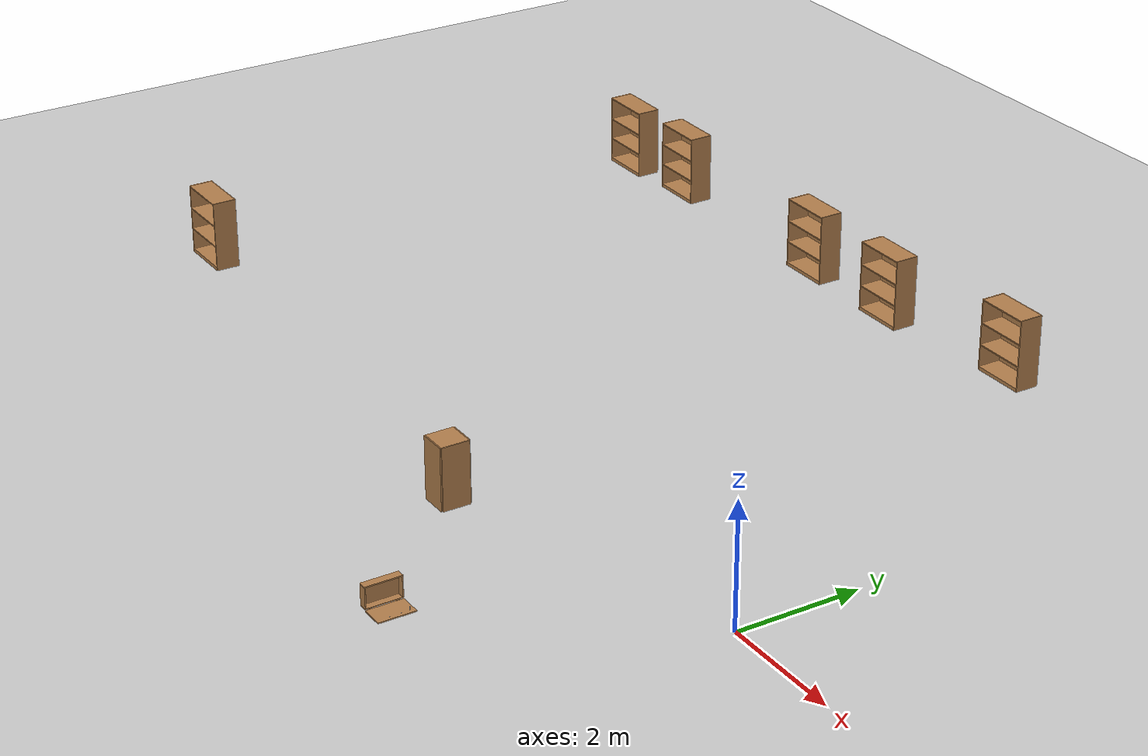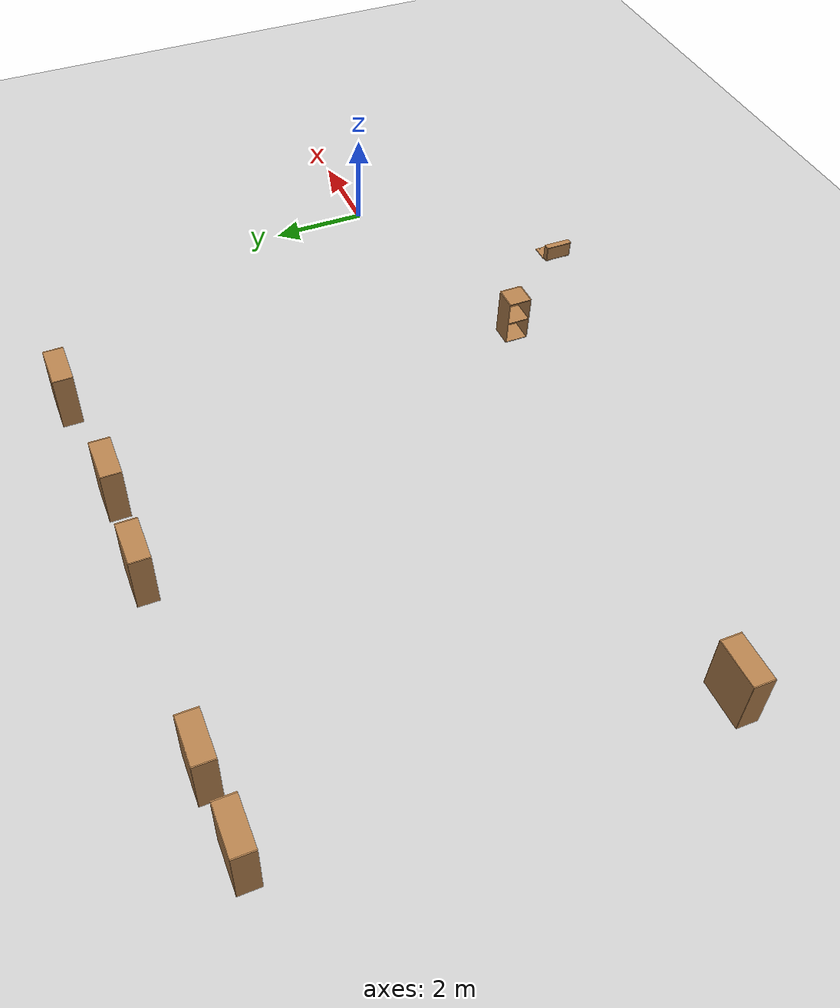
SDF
<sdf version="1.6">
 <world name="default">
  <model name="ground_plane">
   <static>1</static>
   <link name="link">
    <collision name="collision">
     <geometry><plane><normal>0 0 1</normal><size>100 100</size></plane></geometry>
     <surface>
      <contact><collide_bitmask>65535</collide_bitmask></contact>
      <friction><ode><mu>100</mu><mu2>50</mu2></ode></friction>
     </surface>
    </collision>
    <visual name="visual">
     <cast_shadows>0</cast_shadows>
     <geometry><plane><normal>0 0 1</normal><size>100 100</size></plane></geometry>
     <material>
      <script><uri>file://media/materials/scripts/gazebo.material</uri><name>Gazebo/Grey</name></script>
     </material>
    </visual>
   </link>
  </model>
  <model name="cabinet">
   <static>1</static>
   <link name="cabinet_bottom_plate">
    <inertial>
     <pose>0 0 -1 0 -0 0</pose>
     <inertia><ixx>2.05</ixx><ixy>0</ixy><ixz>0</ixz><iyy>2.05</iyy><iyz>0</iyz><izz>2.05</izz></inertia>
     <mass>25</mass>
    </inertial>
    <collision name="cabinet_bottom_plate_geom">
     <pose>0 0 0.01 0 -0 0</pose>
     <geometry><box><size>0.45 0.45 0.02</size></box></geometry>
    </collision>
    <visual name="cabinet_bottom_plate_geom_visual">
     <pose>0 0 0.01 0 -0 0</pose>
     <geometry><box><size>0.45 0.45 0.02</size></box></geometry>
     <material>
      <script><uri>file://media/materials/scripts/gazebo.material</uri><name>Gazebo/Wood</name></script>
     </material>
    </visual>
    <collision name="cabinet_bottom_plate_geom_cabinet_back_plate">
     <pose>0.235 0 0.51 0 -0 0</pose>
     <geometry><box><size>0.02 0.45 1.02</size></box></geometry>
    </collision>
    <visual name="cabinet_bottom_plate_geom_cabinet_back_plate_visual">
     <pose>0.235 0 0.51 0 -0 0</pose>
     <geometry><box><size>0.02 0.45 1.02</size></box></geometry>
     <material>
      <script><uri>file://media/materials/scripts/gazebo.material</uri><name>Gazebo/Wood</name></script>
     </material>
    </visual>
    <collision name="cabinet_bottom_plate_geom_cabinet_left_plate">
     <pose>0 0.235 0.51 0 -0 0</pose>
     <geometry><box><size>0.45 0.02 1.02</size></box></geometry>
    </collision>
    <visual name="cabinet_bottom_plate_geom_cabinet_left_plate_visual">
     <pose>0 0.235 0.51 0 -0 0</pose>
     <geometry><box><size>0.45 0.02 1.02</size></box></geometry>
     <material>
      <script><uri>file://media/materials/scripts/gazebo.material</uri><name>Gazebo/Wood</name></script>
     </material>
    </visual>
    <collision name="cabinet_bottom_plate_geom_cabinet_middle_plate">
     <pose>0 0 0.51 0 -0 0</pose>
     <geometry><box><size>0.45 0.45 0.02</size></box></geometry>
    </collision>
    <visual name="cabinet_bottom_plate_geom_cabinet_middle_plate_visual">
     <pose>0 0 0.51 0 -0 0</pose>
     <geometry><box><size>0.45 0.45 0.02</size></box></geometry>
     <material>
      <script><uri>file://media/materials/scripts/gazebo.material</uri><name>Gazebo/Wood</name></script>
     </material>
    </visual>
    <collision name="cabinet_bottom_plate_geom_cabinet_right_plate">
     <pose>0 -0.235 0.51 0 -0 0</pose>
     <geometry><box><size>0.45 0.02 1.02</size></box></geometry>
    </collision>
    <visual name="cabinet_bottom_plate_geom_cabinet_right_plate_visual">
     <pose>0 -0.235 0.51 0 -0 0</pose>
     <geometry><box><size>0.45 0.02 1.02</size></box></geometry>
     <material>
      <script><uri>file://media/materials/scripts/gazebo.material</uri><name>Gazebo/Wood</name></script>
     </material>
    </visual>
    <collision name="cabinet_bottom_plate_geom_cabinet_top_plate">
     <pose>0 0 1.01 0 -0 0</pose>
     <geometry><box><size>0.45 0.45 0.02</size></box></geometry>
    </collision>
    <visual name="cabinet_bottom_plate_geom_cabinet_top_plate_visual">
     <pose>0 0 1.01 0 -0 0</pose>
     <geometry><box><size>0.45 0.45 0.02</size></box></geometry>
     <material>
      <script><uri>file://media/materials/scripts/gazebo.material</uri><name>Gazebo/Wood</name></script>
     </material>
    </visual>
   </link>
   <pose>-4.98753 -1.47077 0 0 -0 0</pose>
  </model>
  <model name="wooden_case_metal_peg">
   <link name="wooden_case::base">
    <pose>0 0 0.024 0 -0 0</pose>
    <inertial>
     <pose>-0.022184 0 0.171592 0 -0 0</pose>
     <mass>3.96264</mass>
     <inertia>
      <ixx>0.213536</ixx>
      <ixy>0</ixy>
      <ixz>0.000779377</ixz>
      <iyy>0.0708943</iyy>
      <iyz>0</iyz>
      <izz>0.154604</izz>
     </inertia>
    </inertial>
    <collision name="collision_back">
     <pose>-0.053975 0 0.1778 0 -0 0</pose>
     <geometry><box><size>0.01905 0.5461 0.3175</size></box></geometry>
     <surface>
      <contact>
       <poissons_ratio>0.347</poissons_ratio>
       <elastic_modulus>8.8e+09</elastic_modulus>
       <ode><kp>100000</kp><kd>100</kd><max_vel>100</max_vel><min_depth>0.001</min_depth></ode>
      </contact>
      <friction>
       <torsional>
        <coefficient>1</coefficient>
        <use_patch_radius>0</use_patch_radius>
        <surface_radius>0.01</surface_radius>
       </torsional>
      </friction>
     </surface>
    </collision>
    <visual name="visual_back">
     <pose>-0.053975 0 0.1778 0 -0 0</pose>
     <geometry><box><size>0.01905 0.5461 0.3175</size></box></geometry>
     <material>
      <script><uri>file://media/materials/scripts/gazebo.material</uri><name>Gazebo/Wood</name></script>
     </material>
    </visual>
    <collision name="collision_bottom">
     <pose>0 0 0.009525 0 -0 0</pose>
     <geometry><box><size>0.127 0.5842 0.01905</size></box></geometry>
     <surface>
      <contact>
       <poissons_ratio>0.347</poissons_ratio>
       <elastic_modulus>8.8e+09</elastic_modulus>
       <ode><kp>100000</kp><kd>100</kd><max_vel>100</max_vel><min_depth>0.001</min_depth></ode>
      </contact>
      <friction>
       <torsional>
        <coefficient>1</coefficient>
        <use_patch_radius>0</use_patch_radius>
        <surface_radius>0.01</surface_radius>
       </torsional>
      </friction>
     </surface>
    </collision>
    <visual name="visual_bottom">
     <pose>0 0 0.009525 0 -0 0</pose>
     <geometry><box><size>0.127 0.5842 0.01905</size></box></geometry>
     <material>
      <script><uri>file://media/materials/scripts/gazebo.material</uri><name>Gazebo/Wood</name></script>
     </material>
    </visual>
    <collision name="collision_top">
     <pose>0 0 0.346075 0 -0 0</pose>
     <geometry><box><size>0.127 0.5842 0.01905</size></box></geometry>
     <surface>
      <contact>
       <poissons_ratio>0.347</poissons_ratio>
       <elastic_modulus>8.8e+09</elastic_modulus>
       <ode><kp>100000</kp><kd>100</kd><max_vel>100</max_vel><min_depth>0.001</min_depth></ode>
      </contact>
      <friction>
       <torsional>
        <coefficient>1</coefficient>
        <use_patch_radius>0</use_patch_radius>
        <surface_radius>0.01</surface_radius>
       </torsional>
      </friction>
     </surface>
    </collision>
    <visual name="visual_top">
     <pose>0 0 0.346075 0 -0 0</pose>
     <geometry><box><size>0.127 0.5842 0.01905</size></box></geometry>
     <material>
      <script><uri>file://media/materials/scripts/gazebo.material</uri><name>Gazebo/Wood</name></script>
     </material>
    </visual>
    <collision name="collision_left">
     <pose>0 -0.282575 0.1778 0 -0 0</pose>
     <geometry><box><size>0.127 0.01905 0.3175</size></box></geometry>
     <surface>
      <contact>
       <poissons_ratio>0.347</poissons_ratio>
       <elastic_modulus>8.8e+09</elastic_modulus>
       <ode><kp>100000</kp><kd>100</kd><max_vel>100</max_vel><min_depth>0.001</min_depth></ode>
      </contact>
      <friction>
       <torsional>
        <coefficient>1</coefficient>
        <use_patch_radius>0</use_patch_radius>
        <surface_radius>0.01</surface_radius>
       </torsional>
      </friction>
     </surface>
    </collision>
    <visual name="visual_left">
     <pose>0 -0.282575 0.1778 0 -0 0</pose>
     <geometry><box><size>0.127 0.01905 0.3175</size></box></geometry>
     <material>
      <script><uri>file://media/materials/scripts/gazebo.material</uri><name>Gazebo/Wood</name></script>
     </material>
    </visual>
    <collision name="collision_right">
     <pose>0 0.282575 0.1778 0 -0 0</pose>
     <geometry><box><size>0.127 0.01905 0.3175</size></box></geometry>
     <surface>
      <contact>
       <poissons_ratio>0.347</poissons_ratio>
       <elastic_modulus>8.8e+09</elastic_modulus>
       <ode><kp>100000</kp><kd>100</kd><max_vel>100</max_vel><min_depth>0.001</min_depth></ode>
      </contact>
      <friction>
       <torsional>
        <coefficient>1</coefficient>
        <use_patch_radius>0</use_patch_radius>
        <surface_radius>0.01</surface_radius>
       </torsional>
      </friction>
     </surface>
    </collision>
    <visual name="visual_right">
     <pose>0 0.282575 0.1778 0 -0 0</pose>
     <geometry><box><size>0.127 0.01905 0.3175</size></box></geometry>
     <material>
      <script><uri>file://media/materials/scripts/gazebo.material</uri><name>Gazebo/Wood</name></script>
     </material>
    </visual>
    <collision name="collision_block_left">
     <pose>0.0095 -0.2151 -0.012 0 -0 0</pose>
     <geometry><box><size>0.108 0.05 0.024</size></box></geometry>
     <surface>
      <contact>
       <poissons_ratio>0.347</poissons_ratio>
       <elastic_modulus>8.8e+09</elastic_modulus>
       <ode><kp>100000</kp><kd>100</kd><max_vel>100</max_vel><min_depth>0.001</min_depth></ode>
      </contact>
      <friction>
       <torsional>
        <coefficient>1</coefficient>
        <use_patch_radius>0</use_patch_radius>
        <surface_radius>0.01</surface_radius>
       </torsional>
      </friction>
     </surface>
    </collision>
    <visual name="visual_block_left">
     <pose>0.0095 -0.2151 -0.012 0 -0 0</pose>
     <geometry><box><size>0.108 0.05 0.024</size></box></geometry>
     <material>
      <script><uri>file://media/materials/scripts/gazebo.material</uri><name>Gazebo/Wood</name></script>
     </material>
    </visual>
    <collision name="collision_block_right">
     <pose>0.0095 0.2151 -0.012 0 -0 0</pose>
     <geometry><box><size>0.108 0.05 0.024</size></box></geometry>
     <surface>
      <contact>
       <poissons_ratio>0.347</poissons_ratio>
       <elastic_modulus>8.8e+09</elastic_modulus>
       <ode><kp>100000</kp><kd>100</kd><max_vel>100</max_vel><min_depth>0.001</min_depth></ode>
      </contact>
      <friction>
       <torsional>
        <coefficient>1</coefficient>
        <use_patch_radius>0</use_patch_radius>
        <surface_radius>0.01</surface_radius>
       </torsional>
      </friction>
     </surface>
    </collision>
    <visual name="visual_block_right">
     <pose>0.0095 0.2151 -0.012 0 -0 0</pose>
     <geometry><box><size>0.108 0.05 0.024</size></box></geometry>
     <material>
      <script><uri>file://media/materials/scripts/gazebo.material</uri><name>Gazebo/Wood</name></script>
     </material>
    </visual>
   </link>
   <link name="wooden_case::lid">
    <pose>0.243775 0 0.009525 0 -0 0</pose>
    <inertial>
     <mass>1.97874</mass>
     <inertia>
      <ixx>0.0563367</ixx>
      <ixy>0</ixy>
      <ixz>0</ixz>
      <iyy>0.020911</iyy>
      <iyz>0</iyz>
      <izz>0.0771281</izz>
     </inertia>
    </inertial>
    <collision name="collision">
     <geometry><box><size>0.3556 0.5842 0.01905</size></box></geometry>
     <surface>
      <contact>
       <poissons_ratio>0.347</poissons_ratio>
       <elastic_modulus>8.8e+09</elastic_modulus>
       <ode><kp>100000</kp><kd>100</kd><max_vel>100</max_vel><min_depth>0.001</min_depth></ode>
      </contact>
      <friction>
       <torsional>
        <coefficient>1</coefficient>
        <use_patch_radius>0</use_patch_radius>
        <surface_radius>0.01</surface_radius>
       </torsional>
      </friction>
     </surface>
    </collision>
    <visual name="visual">
     <geometry><box><size>0.3556 0.5842 0.01905</size></box></geometry>
     <material>
      <script><uri>file://media/materials/scripts/gazebo.material</uri><name>Gazebo/Wood</name></script>
     </material>
    </visual>
    <visual name="tee_nut_1">
     <pose>0.122 -0.216 0 0 -0 0</pose>
     <geometry><cylinder><radius>0.00635</radius><length>0.0192405</length></cylinder></geometry>
     <material>
      <script><uri>file://media/materials/scripts/gazebo.material</uri><name>Gazebo/Grey</name></script>
     </material>
    </visual>
    <visual name="tee_nut_2">
     <pose>0.122 -0.088 0 0 -0 0</pose>
     <geometry><cylinder><radius>0.00635</radius><length>0.0192405</length></cylinder></geometry>
     <material>
      <script><uri>file://media/materials/scripts/gazebo.material</uri><name>Gazebo/Grey</name></script>
     </material>
    </visual>
    <visual name="tee_nut_3">
     <pose>0.122 0.088 0 0 -0 0</pose>
     <geometry><cylinder><radius>0.00635</radius><length>0.0192405</length></cylinder></geometry>
     <material>
      <script><uri>file://media/materials/scripts/gazebo.material</uri><name>Gazebo/Grey</name></script>
     </material>
    </visual>
    <visual name="tee_nut_4">
     <pose>0.122 0.216 0 0 -0 0</pose>
     <geometry><cylinder><radius>0.00635</radius><length>0.0192405</length></cylinder></geometry>
     <material>
      <script><uri>file://media/materials/scripts/gazebo.material</uri><name>Gazebo/Grey</name></script>
     </material>
    </visual>
   </link>
   <joint name="wooden_case::lid_hinge" type="revolute">
    <pose>-0.1778 0 0.01905 0 -0 0</pose>
    <parent>wooden_case::base</parent>
    <child>wooden_case::lid</child>
    <axis>
     <xyz>0 1 0</xyz>
     <limit><upper>0.523599</upper><lower>-1.5708</lower></limit>
     <use_parent_model_frame>0</use_parent_model_frame>
     <dynamics><spring_reference>0</spring_reference><spring_stiffness>0</spring_stiffness></dynamics>
    </axis>
   </joint>
   <link name="peg::link">
    <pose>0.365774 0.216 0.05005 0 -0 0</pose>
    <inertial>
     <mass>0.0121</mass>
     <inertia>
      <ixx>3.90898e-06</ixx>
      <ixy>0</ixy>
      <ixz>0</ixz>
      <iyy>3.90898e-06</iyy>
      <iyz>0</iyz>
      <izz>6.58845e-08</izz>
     </inertia>
    </inertial>
    <collision name="collision">
     <geometry><cylinder><radius>0.0033</radius><length>0.062</length></cylinder></geometry>
     <surface>
      <contact>
       <poissons_ratio>0.305</poissons_ratio>
       <elastic_modulus>2e+11</elastic_modulus>
       <ode><kp>100000</kp><kd>100</kd><max_vel>100</max_vel><min_depth>0.001</min_depth></ode>
      </contact>
      <friction>
       <torsional>
        <coefficient>1</coefficient>
        <use_patch_radius>0</use_patch_radius>
        <surface_radius>0.01</surface_radius>
       </torsional>
      </friction>
     </surface>
    </collision>
    <visual name="visual">
     <geometry><cylinder><radius>0.0033</radius><length>0.062</length></cylinder></geometry>
     <material>
      <script><uri>file://media/materials/scripts/gazebo.material</uri><name>Gazebo/Grey</name></script>
     </material>
    </visual>
   </link>
   <joint name="case_peg" type="revolute">
    <child>peg::link</child>
    <parent>wooden_case::lid</parent>
    <axis>
     <xyz>0 0 1</xyz>
     <limit><upper>0</upper><lower>0</lower></limit>
     <use_parent_model_frame>0</use_parent_model_frame>
     <dynamics><spring_reference>0</spring_reference><spring_stiffness>0</spring_stiffness></dynamics>
    </axis>
   </joint>
   <pose>-3.07048 -3.55613 -0.001057 0 -0.000425 0</pose>
  </model>
  <model name="bookshelf">
   <static>1</static>
   <link name="link">
    <inertial><mass>1</mass></inertial>
    <collision name="back">
     <pose>0 0.005 0.6 0 -0 0</pose>
     <geometry><box><size>0.9 0.01 1.2</size></box></geometry>
    </collision>
    <visual name="visual1">
     <pose>0 0.005 0.6 0 -0 0</pose>
     <geometry><box><size>0.9 0.01 1.2</size></box></geometry>
     <material>
      <script><uri>file://media/materials/scripts/gazebo.material</uri><name>Gazebo/Wood</name></script>
     </material>
    </visual>
    <collision name="left_side">
     <pose>0.45 -0.195 0.6 0 -0 0</pose>
     <geometry><box><size>0.02 0.4 1.2</size></box></geometry>
    </collision>
    <visual name="visual2">
     <pose>0.45 -0.195 0.6 0 -0 0</pose>
     <geometry><box><size>0.02 0.4 1.2</size></box></geometry>
     <material>
      <script><uri>file://media/materials/scripts/gazebo.material</uri><name>Gazebo/Wood</name></script>
     </material>
    </visual>
    <collision name="right_side">
     <pose>-0.45 -0.195 0.6 0 -0 0</pose>
     <geometry><box><size>0.02 0.4 1.2</size></box></geometry>
    </collision>
    <visual name="visual3">
     <pose>-0.45 -0.195 0.6 0 -0 0</pose>
     <geometry><box><size>0.02 0.4 1.2</size></box></geometry>
     <material>
      <script><uri>file://media/materials/scripts/gazebo.material</uri><name>Gazebo/Wood</name></script>
     </material>
    </visual>
    <collision name="bottom">
     <pose>0 -0.195 0.03 0 -0 0</pose>
     <geometry><box><size>0.88 0.4 0.06</size></box></geometry>
    </collision>
    <visual name="visual4">
     <pose>0 -0.195 0.03 0 -0 0</pose>
     <geometry><box><size>0.88 0.4 0.06</size></box></geometry>
     <material>
      <script><uri>file://media/materials/scripts/gazebo.material</uri><name>Gazebo/Wood</name></script>
     </material>
    </visual>
    <collision name="top">
     <pose>0 -0.195 1.19 0 -0 0</pose>
     <geometry><box><size>0.88 0.4 0.02</size></box></geometry>
    </collision>
    <visual name="visual5">
     <pose>0 -0.195 1.19 0 -0 0</pose>
     <geometry><box><size>0.88 0.4 0.02</size></box></geometry>
     <material>
      <script><uri>file://media/materials/scripts/gazebo.material</uri><name>Gazebo/Wood</name></script>
     </material>
    </visual>
    <collision name="low_shelf">
     <pose>0 -0.195 0.43 0 -0 0</pose>
     <geometry><box><size>0.88 0.4 0.02</size></box></geometry>
    </collision>
    <visual name="visual6">
     <pose>0 -0.195 0.43 0 -0 0</pose>
     <geometry><box><size>0.88 0.4 0.02</size></box></geometry>
     <material>
      <script><uri>file://media/materials/scripts/gazebo.material</uri><name>Gazebo/Wood</name></script>
     </material>
    </visual>
    <collision name="high_shelf">
     <pose>0 -0.195 0.8 0 -0 0</pose>
     <geometry><box><size>0.88 0.4 0.02</size></box></geometry>
    </collision>
    <visual name="visual7">
     <pose>0 -0.195 0.8 0 -0 0</pose>
     <geometry><box><size>0.88 0.4 0.02</size></box></geometry>
     <material>
      <script><uri>file://media/materials/scripts/gazebo.material</uri><name>Gazebo/Wood</name></script>
     </material>
    </visual>
   </link>
   <pose>-3.753 7.8436 0 0 -0 0</pose>
  </model>
  <model name="bookshelf_clone_0">
   <static>1</static>
   <link name="link">
    <inertial><mass>1</mass></inertial>
    <collision name="back">
     <pose>0 0.005 0.6 0 -0 0</pose>
     <geometry><box><size>0.9 0.01 1.2</size></box></geometry>
    </collision>
    <visual name="visual1">
     <pose>0 0.005 0.6 0 -0 0</pose>
     <geometry><box><size>0.9 0.01 1.2</size></box></geometry>
     <material>
      <script><uri>file://media/materials/scripts/gazebo.material</uri><name>Gazebo/Wood</name></script>
     </material>
    </visual>
    <collision name="left_side">
     <pose>0.45 -0.195 0.6 0 -0 0</pose>
     <geometry><box><size>0.02 0.4 1.2</size></box></geometry>
    </collision>
    <visual name="visual2">
     <pose>0.45 -0.195 0.6 0 -0 0</pose>
     <geometry><box><size>0.02 0.4 1.2</size></box></geometry>
     <material>
      <script><uri>file://media/materials/scripts/gazebo.material</uri><name>Gazebo/Wood</name></script>
     </material>
    </visual>
    <collision name="right_side">
     <pose>-0.45 -0.195 0.6 0 -0 0</pose>
     <geometry><box><size>0.02 0.4 1.2</size></box></geometry>
    </collision>
    <visual name="visual3">
     <pose>-0.45 -0.195 0.6 0 -0 0</pose>
     <geometry><box><size>0.02 0.4 1.2</size></box></geometry>
     <material>
      <script><uri>file://media/materials/scripts/gazebo.material</uri><name>Gazebo/Wood</name></script>
     </material>
    </visual>
    <collision name="bottom">
     <pose>0 -0.195 0.03 0 -0 0</pose>
     <geometry><box><size>0.88 0.4 0.06</size></box></geometry>
    </collision>
    <visual name="visual4">
     <pose>0 -0.195 0.03 0 -0 0</pose>
     <geometry><box><size>0.88 0.4 0.06</size></box></geometry>
     <material>
      <script><uri>file://media/materials/scripts/gazebo.material</uri><name>Gazebo/Wood</name></script>
     </material>
    </visual>
    <collision name="top">
     <pose>0 -0.195 1.19 0 -0 0</pose>
     <geometry><box><size>0.88 0.4 0.02</size></box></geometry>
    </collision>
    <visual name="visual5">
     <pose>0 -0.195 1.19 0 -0 0</pose>
     <geometry><box><size>0.88 0.4 0.02</size></box></geometry>
     <material>
      <script><uri>file://media/materials/scripts/gazebo.material</uri><name>Gazebo/Wood</name></script>
     </material>
    </visual>
    <collision name="low_shelf">
     <pose>0 -0.195 0.43 0 -0 0</pose>
     <geometry><box><size>0.88 0.4 0.02</size></box></geometry>
    </collision>
    <visual name="visual6">
     <pose>0 -0.195 0.43 0 -0 0</pose>
     <geometry><box><size>0.88 0.4 0.02</size></box></geometry>
     <material>
      <script><uri>file://media/materials/scripts/gazebo.material</uri><name>Gazebo/Wood</name></script>
     </material>
    </visual>
    <collision name="high_shelf">
     <pose>0 -0.195 0.8 0 -0 0</pose>
     <geometry><box><size>0.88 0.4 0.02</size></box></geometry>
    </collision>
    <visual name="visual7">
     <pose>0 -0.195 0.8 0 -0 0</pose>
     <geometry><box><size>0.88 0.4 0.02</size></box></geometry>
     <material>
      <script><uri>file://media/materials/scripts/gazebo.material</uri><name>Gazebo/Wood</name></script>
     </material>
    </visual>
   </link>
   <pose>-13.7577 7.48584 0 0 -0 0</pose>
  </model>
  <model name="bookshelf_clone_1">
   <static>1</static>
   <link name="link">
    <inertial><mass>1</mass></inertial>
    <collision name="back">
     <pose>0 0.005 0.6 0 -0 0</pose>
     <geometry><box><size>0.9 0.01 1.2</size></box></geometry>
    </collision>
    <visual name="visual1">
     <pose>0 0.005 0.6 0 -0 0</pose>
     <geometry><box><size>0.9 0.01 1.2</size></box></geometry>
     <material>
      <script><uri>file://media/materials/scripts/gazebo.material</uri><name>Gazebo/Wood</name></script>
     </material>
    </visual>
    <collision name="left_side">
     <pose>0.45 -0.195 0.6 0 -0 0</pose>
     <geometry><box><size>0.02 0.4 1.2</size></box></geometry>
    </collision>
    <visual name="visual2">
     <pose>0.45 -0.195 0.6 0 -0 0</pose>
     <geometry><box><size>0.02 0.4 1.2</size></box></geometry>
     <material>
      <script><uri>file://media/materials/scripts/gazebo.material</uri><name>Gazebo/Wood</name></script>
     </material>
    </visual>
    <collision name="right_side">
     <pose>-0.45 -0.195 0.6 0 -0 0</pose>
     <geometry><box><size>0.02 0.4 1.2</size></box></geometry>
    </collision>
    <visual name="visual3">
     <pose>-0.45 -0.195 0.6 0 -0 0</pose>
     <geometry><box><size>0.02 0.4 1.2</size></box></geometry>
     <material>
      <script><uri>file://media/materials/scripts/gazebo.material</uri><name>Gazebo/Wood</name></script>
     </material>
    </visual>
    <collision name="bottom">
     <pose>0 -0.195 0.03 0 -0 0</pose>
     <geometry><box><size>0.88 0.4 0.06</size></box></geometry>
    </collision>
    <visual name="visual4">
     <pose>0 -0.195 0.03 0 -0 0</pose>
     <geometry><box><size>0.88 0.4 0.06</size></box></geometry>
     <material>
      <script><uri>file://media/materials/scripts/gazebo.material</uri><name>Gazebo/Wood</name></script>
     </material>
    </visual>
    <collision name="top">
     <pose>0 -0.195 1.19 0 -0 0</pose>
     <geometry><box><size>0.88 0.4 0.02</size></box></geometry>
    </collision>
    <visual name="visual5">
     <pose>0 -0.195 1.19 0 -0 0</pose>
     <geometry><box><size>0.88 0.4 0.02</size></box></geometry>
     <material>
      <script><uri>file://media/materials/scripts/gazebo.material</uri><name>Gazebo/Wood</name></script>
     </material>
    </visual>
    <collision name="low_shelf">
     <pose>0 -0.195 0.43 0 -0 0</pose>
     <geometry><box><size>0.88 0.4 0.02</size></box></geometry>
    </collision>
    <visual name="visual6">
     <pose>0 -0.195 0.43 0 -0 0</pose>
     <geometry><box><size>0.88 0.4 0.02</size></box></geometry>
     <material>
      <script><uri>file://media/materials/scripts/gazebo.material</uri><name>Gazebo/Wood</name></script>
     </material>
    </visual>
    <collision name="high_shelf">
     <pose>0 -0.195 0.8 0 -0 0</pose>
     <geometry><box><size>0.88 0.4 0.02</size></box></geometry>
    </collision>
    <visual name="visual7">
     <pose>0 -0.195 0.8 0 -0 0</pose>
     <geometry><box><size>0.88 0.4 0.02</size></box></geometry>
     <material>
      <script><uri>file://media/materials/scripts/gazebo.material</uri><name>Gazebo/Wood</name></script>
     </material>
    </visual>
   </link>
   <pose>-12.2693 7.60192 0 0 -0 0</pose>
  </model>
  <model name="bookshelf_clone_2">
   <static>1</static>
   <link name="link">
    <inertial><mass>1</mass></inertial>
    <collision name="back">
     <pose>0 0.005 0.6 0 -0 0</pose>
     <geometry><box><size>0.9 0.01 1.2</size></box></geometry>
    </collision>
    <visual name="visual1">
     <pose>0 0.005 0.6 0 -0 0</pose>
     <geometry><box><size>0.9 0.01 1.2</size></box></geometry>
     <material>
      <script><uri>file://media/materials/scripts/gazebo.material</uri><name>Gazebo/Wood</name></script>
     </material>
    </visual>
    <collision name="left_side">
     <pose>0.45 -0.195 0.6 0 -0 0</pose>
     <geometry><box><size>0.02 0.4 1.2</size></box></geometry>
    </collision>
    <visual name="visual2">
     <pose>0.45 -0.195 0.6 0 -0 0</pose>
     <geometry><box><size>0.02 0.4 1.2</size></box></geometry>
     <material>
      <script><uri>file://media/materials/scripts/gazebo.material</uri><name>Gazebo/Wood</name></script>
     </material>
    </visual>
    <collision name="right_side">
     <pose>-0.45 -0.195 0.6 0 -0 0</pose>
     <geometry><box><size>0.02 0.4 1.2</size></box></geometry>
    </collision>
    <visual name="visual3">
     <pose>-0.45 -0.195 0.6 0 -0 0</pose>
     <geometry><box><size>0.02 0.4 1.2</size></box></geometry>
     <material>
      <script><uri>file://media/materials/scripts/gazebo.material</uri><name>Gazebo/Wood</name></script>
     </material>
    </visual>
    <collision name="bottom">
     <pose>0 -0.195 0.03 0 -0 0</pose>
     <geometry><box><size>0.88 0.4 0.06</size></box></geometry>
    </collision>
    <visual name="visual4">
     <pose>0 -0.195 0.03 0 -0 0</pose>
     <geometry><box><size>0.88 0.4 0.06</size></box></geometry>
     <material>
      <script><uri>file://media/materials/scripts/gazebo.material</uri><name>Gazebo/Wood</name></script>
     </material>
    </visual>
    <collision name="top">
     <pose>0 -0.195 1.19 0 -0 0</pose>
     <geometry><box><size>0.88 0.4 0.02</size></box></geometry>
    </collision>
    <visual name="visual5">
     <pose>0 -0.195 1.19 0 -0 0</pose>
     <geometry><box><size>0.88 0.4 0.02</size></box></geometry>
     <material>
      <script><uri>file://media/materials/scripts/gazebo.material</uri><name>Gazebo/Wood</name></script>
     </material>
    </visual>
    <collision name="low_shelf">
     <pose>0 -0.195 0.43 0 -0 0</pose>
     <geometry><box><size>0.88 0.4 0.02</size></box></geometry>
    </collision>
    <visual name="visual6">
     <pose>0 -0.195 0.43 0 -0 0</pose>
     <geometry><box><size>0.88 0.4 0.02</size></box></geometry>
     <material>
      <script><uri>file://media/materials/scripts/gazebo.material</uri><name>Gazebo/Wood</name></script>
     </material>
    </visual>
    <collision name="high_shelf">
     <pose>0 -0.195 0.8 0 -0 0</pose>
     <geometry><box><size>0.88 0.4 0.02</size></box></geometry>
    </collision>
    <visual name="visual7">
     <pose>0 -0.195 0.8 0 -0 0</pose>
     <geometry><box><size>0.88 0.4 0.02</size></box></geometry>
     <material>
      <script><uri>file://media/materials/scripts/gazebo.material</uri><name>Gazebo/Wood</name></script>
     </material>
    </visual>
   </link>
   <pose>-8.42075 7.55789 0 0 -0 0</pose>
  </model>
  <model name="bookshelf_clone_3">
   <static>1</static>
   <link name="link">
    <inertial><mass>1</mass></inertial>
    <collision name="back">
     <pose>0 0.005 0.6 0 -0 0</pose>
     <geometry><box><size>0.9 0.01 1.2</size></box></geometry>
    </collision>
    <visual name="visual1">
     <pose>0 0.005 0.6 0 -0 0</pose>
     <geometry><box><size>0.9 0.01 1.2</size></box></geometry>
     <material>
      <script><uri>file://media/materials/scripts/gazebo.material</uri><name>Gazebo/Wood</name></script>
     </material>
    </visual>
    <collision name="left_side">
     <pose>0.45 -0.195 0.6 0 -0 0</pose>
     <geometry><box><size>0.02 0.4 1.2</size></box></geometry>
    </collision>
    <visual name="visual2">
     <pose>0.45 -0.195 0.6 0 -0 0</pose>
     <geometry><box><size>0.02 0.4 1.2</size></box></geometry>
     <material>
      <script><uri>file://media/materials/scripts/gazebo.material</uri><name>Gazebo/Wood</name></script>
     </material>
    </visual>
    <collision name="right_side">
     <pose>-0.45 -0.195 0.6 0 -0 0</pose>
     <geometry><box><size>0.02 0.4 1.2</size></box></geometry>
    </collision>
    <visual name="visual3">
     <pose>-0.45 -0.195 0.6 0 -0 0</pose>
     <geometry><box><size>0.02 0.4 1.2</size></box></geometry>
     <material>
      <script><uri>file://media/materials/scripts/gazebo.material</uri><name>Gazebo/Wood</name></script>
     </material>
    </visual>
    <collision name="bottom">
     <pose>0 -0.195 0.03 0 -0 0</pose>
     <geometry><box><size>0.88 0.4 0.06</size></box></geometry>
    </collision>
    <visual name="visual4">
     <pose>0 -0.195 0.03 0 -0 0</pose>
     <geometry><box><size>0.88 0.4 0.06</size></box></geometry>
     <material>
      <script><uri>file://media/materials/scripts/gazebo.material</uri><name>Gazebo/Wood</name></script>
     </material>
    </visual>
    <collision name="top">
     <pose>0 -0.195 1.19 0 -0 0</pose>
     <geometry><box><size>0.88 0.4 0.02</size></box></geometry>
    </collision>
    <visual name="visual5">
     <pose>0 -0.195 1.19 0 -0 0</pose>
     <geometry><box><size>0.88 0.4 0.02</size></box></geometry>
     <material>
      <script><uri>file://media/materials/scripts/gazebo.material</uri><name>Gazebo/Wood</name></script>
     </material>
    </visual>
    <collision name="low_shelf">
     <pose>0 -0.195 0.43 0 -0 0</pose>
     <geometry><box><size>0.88 0.4 0.02</size></box></geometry>
    </collision>
    <visual name="visual6">
     <pose>0 -0.195 0.43 0 -0 0</pose>
     <geometry><box><size>0.88 0.4 0.02</size></box></geometry>
     <material>
      <script><uri>file://media/materials/scripts/gazebo.material</uri><name>Gazebo/Wood</name></script>
     </material>
    </visual>
    <collision name="high_shelf">
     <pose>0 -0.195 0.8 0 -0 0</pose>
     <geometry><box><size>0.88 0.4 0.02</size></box></geometry>
    </collision>
    <visual name="visual7">
     <pose>0 -0.195 0.8 0 -0 0</pose>
     <geometry><box><size>0.88 0.4 0.02</size></box></geometry>
     <material>
      <script><uri>file://media/materials/scripts/gazebo.material</uri><name>Gazebo/Wood</name></script>
     </material>
    </visual>
   </link>
   <pose>-6.423 7.55711 0 0 -0 0</pose>
  </model>
  <model name="bookshelf_clone_4">
   <static>1</static>
   <link name="link">
    <inertial><mass>1</mass></inertial>
    <collision name="back">
     <pose>0 0.005 0.6 0 -0 0</pose>
     <geometry><box><size>0.9 0.01 1.2</size></box></geometry>
    </collision>
    <visual name="visual1">
     <pose>0 0.005 0.6 0 -0 0</pose>
     <geometry><box><size>0.9 0.01 1.2</size></box></geometry>
     <material>
      <script><uri>file://media/materials/scripts/gazebo.material</uri><name>Gazebo/Wood</name></script>
     </material>
    </visual>
    <collision name="left_side">
     <pose>0.45 -0.195 0.6 0 -0 0</pose>
     <geometry><box><size>0.02 0.4 1.2</size></box></geometry>
    </collision>
    <visual name="visual2">
     <pose>0.45 -0.195 0.6 0 -0 0</pose>
     <geometry><box><size>0.02 0.4 1.2</size></box></geometry>
     <material>
      <script><uri>file://media/materials/scripts/gazebo.material</uri><name>Gazebo/Wood</name></script>
     </material>
    </visual>
    <collision name="right_side">
     <pose>-0.45 -0.195 0.6 0 -0 0</pose>
     <geometry><box><size>0.02 0.4 1.2</size></box></geometry>
    </collision>
    <visual name="visual3">
     <pose>-0.45 -0.195 0.6 0 -0 0</pose>
     <geometry><box><size>0.02 0.4 1.2</size></box></geometry>
     <material>
      <script><uri>file://media/materials/scripts/gazebo.material</uri><name>Gazebo/Wood</name></script>
     </material>
    </visual>
    <collision name="bottom">
     <pose>0 -0.195 0.03 0 -0 0</pose>
     <geometry><box><size>0.88 0.4 0.06</size></box></geometry>
    </collision>
    <visual name="visual4">
     <pose>0 -0.195 0.03 0 -0 0</pose>
     <geometry><box><size>0.88 0.4 0.06</size></box></geometry>
     <material>
      <script><uri>file://media/materials/scripts/gazebo.material</uri><name>Gazebo/Wood</name></script>
     </material>
    </visual>
    <collision name="top">
     <pose>0 -0.195 1.19 0 -0 0</pose>
     <geometry><box><size>0.88 0.4 0.02</size></box></geometry>
    </collision>
    <visual name="visual5">
     <pose>0 -0.195 1.19 0 -0 0</pose>
     <geometry><box><size>0.88 0.4 0.02</size></box></geometry>
     <material>
      <script><uri>file://media/materials/scripts/gazebo.material</uri><name>Gazebo/Wood</name></script>
     </material>
    </visual>
    <collision name="low_shelf">
     <pose>0 -0.195 0.43 0 -0 0</pose>
     <geometry><box><size>0.88 0.4 0.02</size></box></geometry>
    </collision>
    <visual name="visual6">
     <pose>0 -0.195 0.43 0 -0 0</pose>
     <geometry><box><size>0.88 0.4 0.02</size></box></geometry>
     <material>
      <script><uri>file://media/materials/scripts/gazebo.material</uri><name>Gazebo/Wood</name></script>
     </material>
    </visual>
    <collision name="high_shelf">
     <pose>0 -0.195 0.8 0 -0 0</pose>
     <geometry><box><size>0.88 0.4 0.02</size></box></geometry>
    </collision>
    <visual name="visual7">
     <pose>0 -0.195 0.8 0 -0 0</pose>
     <geometry><box><size>0.88 0.4 0.02</size></box></geometry>
     <material>
      <script><uri>file://media/materials/scripts/gazebo.material</uri><name>Gazebo/Wood</name></script>
     </material>
    </visual>
   </link>
   <pose>-14.141 -0.57087 0 0 -0 0</pose>
  </model>
 </world>
</sdf>
